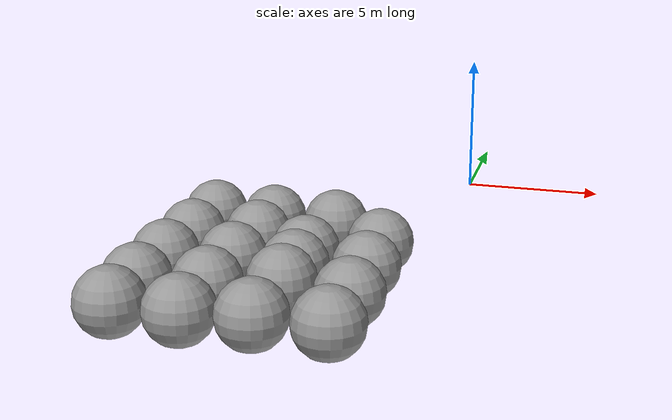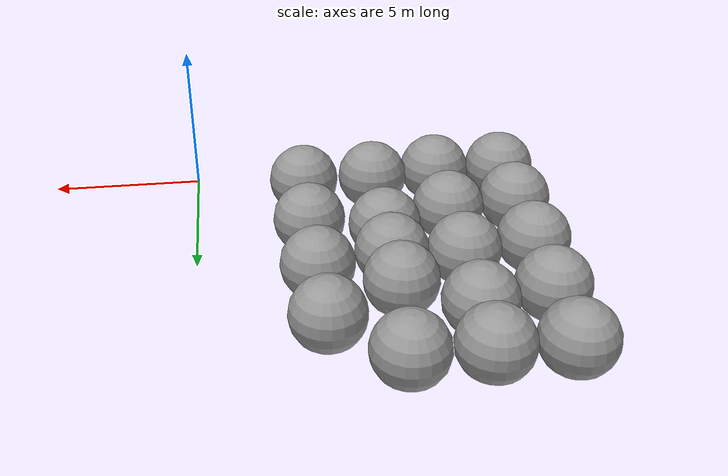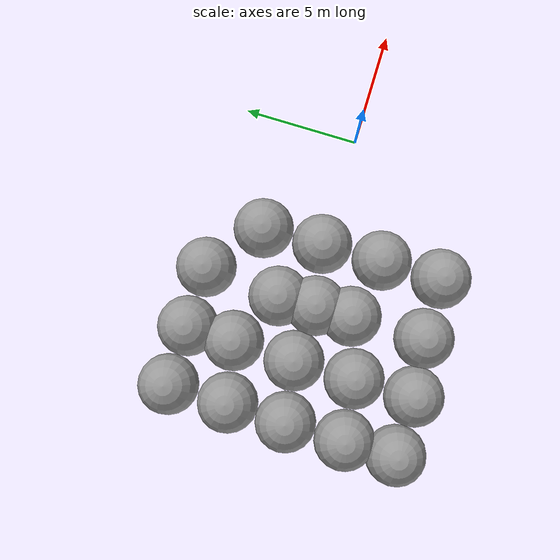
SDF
<sdf version="1.7">
 <world name="default">
  <model name="fly_spawn_38">
   <link name="link_0">
    <inertial>
     <mass>1</mass>
     <inertia><ixx>0.1</ixx><ixy>0</ixy><ixz>0</ixz><iyy>0.1</iyy><iyz>0</iyz><izz>0.1</izz></inertia>
     <pose>0 0 -2.0 0 -0 0</pose>
    </inertial>
    <visual name="visual">
     <pose>0 0 -2.0 0 -0 0</pose>
     <geometry><sphere><radius>1.5</radius></sphere></geometry>
     <material>
      <lighting>1</lighting>
      <script><uri>file://media/materials/scripts/gazebo.material</uri><name>Gazebo/Grey</name></script>
      <shader type="pixel"><normal_map>__default__</normal_map></shader>
      <ambient>0.3 0.3 0.3 1</ambient>
      <diffuse>0.7 0.7 0.7 1</diffuse>
      <specular>0.01 0.01 0.01 1</specular>
      <emissive>0 0 0 1</emissive>
     </material>
    </visual>
    <collision name="collision">
     <pose>0 0 -2.0 0 -0 0</pose>
     <geometry><sphere><radius>1.5</radius></sphere></geometry>
     <surface>
      <friction>
       <ode><mu>1</mu><mu2>1</mu2><fdir1>0 0 0</fdir1><slip1>0</slip1><slip2>0</slip2></ode>
       <torsional>
        <coefficient>1</coefficient>
        <patch_radius>0</patch_radius>
        <surface_radius>0</surface_radius>
        <use_patch_radius>1</use_patch_radius>
        <ode><slip>0</slip></ode>
       </torsional>
      </friction>
      <bounce><restitution_coefficient>0</restitution_coefficient><threshold>1e+06</threshold></bounce>
      <contact>
       <collide_without_contact>0</collide_without_contact>
       <collide_without_contact_bitmask>1</collide_without_contact_bitmask>
       <collide_bitmask>1</collide_bitmask>
       <ode>
        <soft_cfm>0</soft_cfm>
        <soft_erp>0.2</soft_erp>
        <kp>1e+13</kp>
        <kd>1</kd>
        <max_vel>0.01</max_vel>
        <min_depth>0</min_depth>
       </ode>
       <bullet>
        <split_impulse>1</split_impulse>
        <split_impulse_penetration_threshold>-0.01</split_impulse_penetration_threshold>
        <soft_cfm>0</soft_cfm>
        <soft_erp>0.2</soft_erp>
        <kp>1e+13</kp>
        <kd>1</kd>
       </bullet>
      </contact>
     </surface>
    </collision>
   </link>
   <static>1</static>
   <pose>-13.0749 5.32969 -2.0 0 -0 0</pose>
  </model>
  <model name="fly_spawn_0">
   <link name="link_0">
    <inertial>
     <mass>1</mass>
     <inertia><ixx>0.1</ixx><ixy>0</ixy><ixz>0</ixz><iyy>0.1</iyy><iyz>0</iyz><izz>0.1</izz></inertia>
     <pose>0 0 -2.0 0 -0 0</pose>
    </inertial>
    <visual name="visual">
     <pose>0 0 -2.0 0 -0 0</pose>
     <geometry><sphere><radius>1.5</radius></sphere></geometry>
     <material>
      <lighting>1</lighting>
      <script><uri>file://media/materials/scripts/gazebo.material</uri><name>Gazebo/Grey</name></script>
      <shader type="pixel"><normal_map>__default__</normal_map></shader>
      <ambient>0.3 0.3 0.3 1</ambient>
      <diffuse>0.7 0.7 0.7 1</diffuse>
      <specular>0.01 0.01 0.01 1</specular>
      <emissive>0 0 0 1</emissive>
     </material>
    </visual>
    <collision name="collision">
     <pose>0 0 -2.0 0 -0 0</pose>
     <geometry><sphere><radius>1.5</radius></sphere></geometry>
     <surface>
      <friction>
       <ode><mu>1</mu><mu2>1</mu2><fdir1>0 0 0</fdir1><slip1>0</slip1><slip2>0</slip2></ode>
       <torsional>
        <coefficient>1</coefficient>
        <patch_radius>0</patch_radius>
        <surface_radius>0</surface_radius>
        <use_patch_radius>1</use_patch_radius>
        <ode><slip>0</slip></ode>
       </torsional>
      </friction>
      <bounce><restitution_coefficient>0</restitution_coefficient><threshold>1e+06</threshold></bounce>
      <contact>
       <collide_without_contact>0</collide_without_contact>
       <collide_without_contact_bitmask>1</collide_without_contact_bitmask>
       <collide_bitmask>1</collide_bitmask>
       <ode>
        <soft_cfm>0</soft_cfm>
        <soft_erp>0.2</soft_erp>
        <kp>1e+13</kp>
        <kd>1</kd>
        <max_vel>0.01</max_vel>
        <min_depth>0</min_depth>
       </ode>
       <bullet>
        <split_impulse>1</split_impulse>
        <split_impulse_penetration_threshold>-0.01</split_impulse_penetration_threshold>
        <soft_cfm>0</soft_cfm>
        <soft_erp>0.2</soft_erp>
        <kp>1e+13</kp>
        <kd>1</kd>
       </bullet>
      </contact>
     </surface>
    </collision>
   </link>
   <static>1</static>
   <pose>-13.0897 2.29971 -2.0 0 -0 0</pose>
  </model>
  <model name="fly_spawn_1">
   <link name="link_0">
    <inertial>
     <mass>1</mass>
     <inertia><ixx>0.1</ixx><ixy>0</ixy><ixz>0</ixz><iyy>0.1</iyy><iyz>0</iyz><izz>0.1</izz></inertia>
     <pose>0 0 -2.0 0 -0 0</pose>
    </inertial>
    <visual name="visual">
     <pose>0 0 -2.0 0 -0 0</pose>
     <geometry><sphere><radius>1.5</radius></sphere></geometry>
     <material>
      <lighting>1</lighting>
      <script><uri>file://media/materials/scripts/gazebo.material</uri><name>Gazebo/Grey</name></script>
      <shader type="pixel"><normal_map>__default__</normal_map></shader>
      <ambient>0.3 0.3 0.3 1</ambient>
      <diffuse>0.7 0.7 0.7 1</diffuse>
      <specular>0.01 0.01 0.01 1</specular>
      <emissive>0 0 0 1</emissive>
     </material>
    </visual>
    <collision name="collision">
     <pose>0 0 -2.0 0 -0 0</pose>
     <geometry><sphere><radius>1.5</radius></sphere></geometry>
     <surface>
      <friction>
       <ode><mu>1</mu><mu2>1</mu2><fdir1>0 0 0</fdir1><slip1>0</slip1><slip2>0</slip2></ode>
       <torsional>
        <coefficient>1</coefficient>
        <patch_radius>0</patch_radius>
        <surface_radius>0</surface_radius>
        <use_patch_radius>1</use_patch_radius>
        <ode><slip>0</slip></ode>
       </torsional>
      </friction>
      <bounce><restitution_coefficient>0</restitution_coefficient><threshold>1e+06</threshold></bounce>
      <contact>
       <collide_without_contact>0</collide_without_contact>
       <collide_without_contact_bitmask>1</collide_without_contact_bitmask>
       <collide_bitmask>1</collide_bitmask>
       <ode>
        <soft_cfm>0</soft_cfm>
        <soft_erp>0.2</soft_erp>
        <kp>1e+13</kp>
        <kd>1</kd>
        <max_vel>0.01</max_vel>
        <min_depth>0</min_depth>
       </ode>
       <bullet>
        <split_impulse>1</split_impulse>
        <split_impulse_penetration_threshold>-0.01</split_impulse_penetration_threshold>
        <soft_cfm>0</soft_cfm>
        <soft_erp>0.2</soft_erp>
        <kp>1e+13</kp>
        <kd>1</kd>
       </bullet>
      </contact>
     </surface>
    </collision>
   </link>
   <static>1</static>
   <pose>-13.174 -0.669702 -2.0 0 -0 0</pose>
  </model>
  <model name="fly_spawn_2">
   <link name="link_0">
    <inertial>
     <mass>1</mass>
     <inertia><ixx>0.1</ixx><ixy>0</ixy><ixz>0</ixz><iyy>0.1</iyy><iyz>0</iyz><izz>0.1</izz></inertia>
     <pose>0 0 -2.0 0 -0 0</pose>
    </inertial>
    <visual name="visual">
     <pose>0 0 -2.0 0 -0 0</pose>
     <geometry><sphere><radius>1.5</radius></sphere></geometry>
     <material>
      <lighting>1</lighting>
      <script><uri>file://media/materials/scripts/gazebo.material</uri><name>Gazebo/Grey</name></script>
      <shader type="pixel"><normal_map>__default__</normal_map></shader>
      <ambient>0.3 0.3 0.3 1</ambient>
      <diffuse>0.7 0.7 0.7 1</diffuse>
      <specular>0.01 0.01 0.01 1</specular>
      <emissive>0 0 0 1</emissive>
     </material>
    </visual>
    <collision name="collision">
     <pose>0 0 -2.0 0 -0 0</pose>
     <geometry><sphere><radius>1.5</radius></sphere></geometry>
     <surface>
      <friction>
       <ode><mu>1</mu><mu2>1</mu2><fdir1>0 0 0</fdir1><slip1>0</slip1><slip2>0</slip2></ode>
       <torsional>
        <coefficient>1</coefficient>
        <patch_radius>0</patch_radius>
        <surface_radius>0</surface_radius>
        <use_patch_radius>1</use_patch_radius>
        <ode><slip>0</slip></ode>
       </torsional>
      </friction>
      <bounce><restitution_coefficient>0</restitution_coefficient><threshold>1e+06</threshold></bounce>
      <contact>
       <collide_without_contact>0</collide_without_contact>
       <collide_without_contact_bitmask>1</collide_without_contact_bitmask>
       <collide_bitmask>1</collide_bitmask>
       <ode>
        <soft_cfm>0</soft_cfm>
        <soft_erp>0.2</soft_erp>
        <kp>1e+13</kp>
        <kd>1</kd>
        <max_vel>0.01</max_vel>
        <min_depth>0</min_depth>
       </ode>
       <bullet>
        <split_impulse>1</split_impulse>
        <split_impulse_penetration_threshold>-0.01</split_impulse_penetration_threshold>
        <soft_cfm>0</soft_cfm>
        <soft_erp>0.2</soft_erp>
        <kp>1e+13</kp>
        <kd>1</kd>
       </bullet>
      </contact>
     </surface>
    </collision>
   </link>
   <static>1</static>
   <pose>-13.1784 -3.65977 -2.0 0 -0 0</pose>
  </model>
  <model name="fly_spawn_3">
   <link name="link_0">
    <inertial>
     <mass>1</mass>
     <inertia><ixx>0.1</ixx><ixy>0</ixy><ixz>0</ixz><iyy>0.1</iyy><iyz>0</iyz><izz>0.1</izz></inertia>
     <pose>0 0 -2.0 0 -0 0</pose>
    </inertial>
    <visual name="visual">
     <pose>0 0 -2.0 0 -0 0</pose>
     <geometry><sphere><radius>1.5</radius></sphere></geometry>
     <material>
      <lighting>1</lighting>
      <script><uri>file://media/materials/scripts/gazebo.material</uri><name>Gazebo/Grey</name></script>
      <shader type="pixel"><normal_map>__default__</normal_map></shader>
      <ambient>0.3 0.3 0.3 1</ambient>
      <diffuse>0.7 0.7 0.7 1</diffuse>
      <specular>0.01 0.01 0.01 1</specular>
      <emissive>0 0 0 1</emissive>
     </material>
    </visual>
    <collision name="collision">
     <pose>0 0 -2.0 0 -0 0</pose>
     <geometry><sphere><radius>1.5</radius></sphere></geometry>
     <surface>
      <friction>
       <ode><mu>1</mu><mu2>1</mu2><fdir1>0 0 0</fdir1><slip1>0</slip1><slip2>0</slip2></ode>
       <torsional>
        <coefficient>1</coefficient>
        <patch_radius>0</patch_radius>
        <surface_radius>0</surface_radius>
        <use_patch_radius>1</use_patch_radius>
        <ode><slip>0</slip></ode>
       </torsional>
      </friction>
      <bounce><restitution_coefficient>0</restitution_coefficient><threshold>1e+06</threshold></bounce>
      <contact>
       <collide_without_contact>0</collide_without_contact>
       <collide_without_contact_bitmask>1</collide_without_contact_bitmask>
       <collide_bitmask>1</collide_bitmask>
       <ode>
        <soft_cfm>0</soft_cfm>
        <soft_erp>0.2</soft_erp>
        <kp>1e+13</kp>
        <kd>1</kd>
        <max_vel>0.01</max_vel>
        <min_depth>0</min_depth>
       </ode>
       <bullet>
        <split_impulse>1</split_impulse>
        <split_impulse_penetration_threshold>-0.01</split_impulse_penetration_threshold>
        <soft_cfm>0</soft_cfm>
        <soft_erp>0.2</soft_erp>
        <kp>1e+13</kp>
        <kd>1</kd>
       </bullet>
      </contact>
     </surface>
    </collision>
   </link>
   <static>1</static>
   <pose>-13.1495 -6.24009 -2.0 0 -0 0</pose>
  </model>
  <model name="fly_spawn_4">
   <link name="link_0">
    <inertial>
     <mass>1</mass>
     <inertia><ixx>0.1</ixx><ixy>0</ixy><ixz>0</ixz><iyy>0.1</iyy><iyz>0</iyz><izz>0.1</izz></inertia>
     <pose>0 0 -2.0 0 -0 0</pose>
    </inertial>
    <visual name="visual">
     <pose>0 0 -2.0 0 -0 0</pose>
     <geometry><sphere><radius>1.5</radius></sphere></geometry>
     <material>
      <lighting>1</lighting>
      <script><uri>file://media/materials/scripts/gazebo.material</uri><name>Gazebo/Grey</name></script>
      <shader type="pixel"><normal_map>__default__</normal_map></shader>
      <ambient>0.3 0.3 0.3 1</ambient>
      <diffuse>0.7 0.7 0.7 1</diffuse>
      <specular>0.01 0.01 0.01 1</specular>
      <emissive>0 0 0 1</emissive>
     </material>
    </visual>
    <collision name="collision">
     <pose>0 0 -2.0 0 -0 0</pose>
     <geometry><sphere><radius>1.5</radius></sphere></geometry>
     <surface>
      <friction>
       <ode><mu>1</mu><mu2>1</mu2><fdir1>0 0 0</fdir1><slip1>0</slip1><slip2>0</slip2></ode>
       <torsional>
        <coefficient>1</coefficient>
        <patch_radius>0</patch_radius>
        <surface_radius>0</surface_radius>
        <use_patch_radius>1</use_patch_radius>
        <ode><slip>0</slip></ode>
       </torsional>
      </friction>
      <bounce><restitution_coefficient>0</restitution_coefficient><threshold>1e+06</threshold></bounce>
      <contact>
       <collide_without_contact>0</collide_without_contact>
       <collide_without_contact_bitmask>1</collide_without_contact_bitmask>
       <collide_bitmask>1</collide_bitmask>
       <ode>
        <soft_cfm>0</soft_cfm>
        <soft_erp>0.2</soft_erp>
        <kp>1e+13</kp>
        <kd>1</kd>
        <max_vel>0.01</max_vel>
        <min_depth>0</min_depth>
       </ode>
       <bullet>
        <split_impulse>1</split_impulse>
        <split_impulse_penetration_threshold>-0.01</split_impulse_penetration_threshold>
        <soft_cfm>0</soft_cfm>
        <soft_erp>0.2</soft_erp>
        <kp>1e+13</kp>
        <kd>1</kd>
       </bullet>
      </contact>
     </surface>
    </collision>
   </link>
   <static>1</static>
   <pose>-10.1867 -6.30589 -2.0 0 -0 0</pose>
  </model>
  <model name="fly_spawn_5">
   <link name="link_0">
    <inertial>
     <mass>1</mass>
     <inertia><ixx>0.1</ixx><ixy>0</ixy><ixz>0</ixz><iyy>0.1</iyy><iyz>0</iyz><izz>0.1</izz></inertia>
     <pose>0 0 -2.0 0 -0 0</pose>
    </inertial>
    <visual name="visual">
     <pose>0 0 -2.0 0 -0 0</pose>
     <geometry><sphere><radius>1.5</radius></sphere></geometry>
     <material>
      <lighting>1</lighting>
      <script><uri>file://media/materials/scripts/gazebo.material</uri><name>Gazebo/Grey</name></script>
      <shader type="pixel"><normal_map>__default__</normal_map></shader>
      <ambient>0.3 0.3 0.3 1</ambient>
      <diffuse>0.7 0.7 0.7 1</diffuse>
      <specular>0.01 0.01 0.01 1</specular>
      <emissive>0 0 0 1</emissive>
     </material>
    </visual>
    <collision name="collision">
     <pose>0 0 -2.0 0 -0 0</pose>
     <geometry><sphere><radius>1.5</radius></sphere></geometry>
     <surface>
      <friction>
       <ode><mu>1</mu><mu2>1</mu2><fdir1>0 0 0</fdir1><slip1>0</slip1><slip2>0</slip2></ode>
       <torsional>
        <coefficient>1</coefficient>
        <patch_radius>0</patch_radius>
        <surface_radius>0</surface_radius>
        <use_patch_radius>1</use_patch_radius>
        <ode><slip>0</slip></ode>
       </torsional>
      </friction>
      <bounce><restitution_coefficient>0</restitution_coefficient><threshold>1e+06</threshold></bounce>
      <contact>
       <collide_without_contact>0</collide_without_contact>
       <collide_without_contact_bitmask>1</collide_without_contact_bitmask>
       <collide_bitmask>1</collide_bitmask>
       <ode>
        <soft_cfm>0</soft_cfm>
        <soft_erp>0.2</soft_erp>
        <kp>1e+13</kp>
        <kd>1</kd>
        <max_vel>0.01</max_vel>
        <min_depth>0</min_depth>
       </ode>
       <bullet>
        <split_impulse>1</split_impulse>
        <split_impulse_penetration_threshold>-0.01</split_impulse_penetration_threshold>
        <soft_cfm>0</soft_cfm>
        <soft_erp>0.2</soft_erp>
        <kp>1e+13</kp>
        <kd>1</kd>
       </bullet>
      </contact>
     </surface>
    </collision>
   </link>
   <static>1</static>
   <pose>-10.206 -3.27536 -2.0 0 -0 0</pose>
  </model>
  <model name="fly_spawn_6">
   <link name="link_0">
    <inertial>
     <mass>1</mass>
     <inertia><ixx>0.1</ixx><ixy>0</ixy><ixz>0</ixz><iyy>0.1</iyy><iyz>0</iyz><izz>0.1</izz></inertia>
     <pose>0 0 -2.0 0 -0 0</pose>
    </inertial>
    <visual name="visual">
     <pose>0 0 -2.0 0 -0 0</pose>
     <geometry><sphere><radius>1.5</radius></sphere></geometry>
     <material>
      <lighting>1</lighting>
      <script><uri>file://media/materials/scripts/gazebo.material</uri><name>Gazebo/Grey</name></script>
      <shader type="pixel"><normal_map>__default__</normal_map></shader>
      <ambient>0.3 0.3 0.3 1</ambient>
      <diffuse>0.7 0.7 0.7 1</diffuse>
      <specular>0.01 0.01 0.01 1</specular>
      <emissive>0 0 0 1</emissive>
     </material>
    </visual>
    <collision name="collision">
     <pose>0 0 -2.0 0 -0 0</pose>
     <geometry><sphere><radius>1.5</radius></sphere></geometry>
     <surface>
      <friction>
       <ode><mu>1</mu><mu2>1</mu2><fdir1>0 0 0</fdir1><slip1>0</slip1><slip2>0</slip2></ode>
       <torsional>
        <coefficient>1</coefficient>
        <patch_radius>0</patch_radius>
        <surface_radius>0</surface_radius>
        <use_patch_radius>1</use_patch_radius>
        <ode><slip>0</slip></ode>
       </torsional>
      </friction>
      <bounce><restitution_coefficient>0</restitution_coefficient><threshold>1e+06</threshold></bounce>
      <contact>
       <collide_without_contact>0</collide_without_contact>
       <collide_without_contact_bitmask>1</collide_without_contact_bitmask>
       <collide_bitmask>1</collide_bitmask>
       <ode>
        <soft_cfm>0</soft_cfm>
        <soft_erp>0.2</soft_erp>
        <kp>1e+13</kp>
        <kd>1</kd>
        <max_vel>0.01</max_vel>
        <min_depth>0</min_depth>
       </ode>
       <bullet>
        <split_impulse>1</split_impulse>
        <split_impulse_penetration_threshold>-0.01</split_impulse_penetration_threshold>
        <soft_cfm>0</soft_cfm>
        <soft_erp>0.2</soft_erp>
        <kp>1e+13</kp>
        <kd>1</kd>
       </bullet>
      </contact>
     </surface>
    </collision>
   </link>
   <static>1</static>
   <pose>-10.2147 -0.204964 -2.0 0 -0 0</pose>
  </model>
  <model name="fly_spawn_7">
   <link name="link_0">
    <inertial>
     <mass>1</mass>
     <inertia><ixx>0.1</ixx><ixy>0</ixy><ixz>0</ixz><iyy>0.1</iyy><iyz>0</iyz><izz>0.1</izz></inertia>
     <pose>0 0 -2.0 0 -0 0</pose>
    </inertial>
    <visual name="visual">
     <pose>0 0 -2.0 0 -0 0</pose>
     <geometry><sphere><radius>1.5</radius></sphere></geometry>
     <material>
      <lighting>1</lighting>
      <script><uri>file://media/materials/scripts/gazebo.material</uri><name>Gazebo/Grey</name></script>
      <shader type="pixel"><normal_map>__default__</normal_map></shader>
      <ambient>0.3 0.3 0.3 1</ambient>
      <diffuse>0.7 0.7 0.7 1</diffuse>
      <specular>0.01 0.01 0.01 1</specular>
      <emissive>0 0 0 1</emissive>
     </material>
    </visual>
    <collision name="collision">
     <pose>0 0 -2.0 0 -0 0</pose>
     <geometry><sphere><radius>1.5</radius></sphere></geometry>
     <surface>
      <friction>
       <ode><mu>1</mu><mu2>1</mu2><fdir1>0 0 0</fdir1><slip1>0</slip1><slip2>0</slip2></ode>
       <torsional>
        <coefficient>1</coefficient>
        <patch_radius>0</patch_radius>
        <surface_radius>0</surface_radius>
        <use_patch_radius>1</use_patch_radius>
        <ode><slip>0</slip></ode>
       </torsional>
      </friction>
      <bounce><restitution_coefficient>0</restitution_coefficient><threshold>1e+06</threshold></bounce>
      <contact>
       <collide_without_contact>0</collide_without_contact>
       <collide_without_contact_bitmask>1</collide_without_contact_bitmask>
       <collide_bitmask>1</collide_bitmask>
       <ode>
        <soft_cfm>0</soft_cfm>
        <soft_erp>0.2</soft_erp>
        <kp>1e+13</kp>
        <kd>1</kd>
        <max_vel>0.01</max_vel>
        <min_depth>0</min_depth>
       </ode>
       <bullet>
        <split_impulse>1</split_impulse>
        <split_impulse_penetration_threshold>-0.01</split_impulse_penetration_threshold>
        <soft_cfm>0</soft_cfm>
        <soft_erp>0.2</soft_erp>
        <kp>1e+13</kp>
        <kd>1</kd>
       </bullet>
      </contact>
     </surface>
    </collision>
   </link>
   <static>1</static>
   <pose>-10.1328 2.91422 -2.0 0 -0 0</pose>
  </model>
  <model name="fly_spawn_8">
   <link name="link_0">
    <inertial>
     <mass>1</mass>
     <inertia><ixx>0.1</ixx><ixy>0</ixy><ixz>0</ixz><iyy>0.1</iyy><iyz>0</iyz><izz>0.1</izz></inertia>
     <pose>0 0 -2.0 0 -0 0</pose>
    </inertial>
    <visual name="visual">
     <pose>0 0 -2.0 0 -0 0</pose>
     <geometry><sphere><radius>1.5</radius></sphere></geometry>
     <material>
      <lighting>1</lighting>
      <script><uri>file://media/materials/scripts/gazebo.material</uri><name>Gazebo/Grey</name></script>
      <shader type="pixel"><normal_map>__default__</normal_map></shader>
      <ambient>0.3 0.3 0.3 1</ambient>
      <diffuse>0.7 0.7 0.7 1</diffuse>
      <specular>0.01 0.01 0.01 1</specular>
      <emissive>0 0 0 1</emissive>
     </material>
    </visual>
    <collision name="collision">
     <pose>0 0 -2.0 0 -0 0</pose>
     <geometry><sphere><radius>1.5</radius></sphere></geometry>
     <surface>
      <friction>
       <ode><mu>1</mu><mu2>1</mu2><fdir1>0 0 0</fdir1><slip1>0</slip1><slip2>0</slip2></ode>
       <torsional>
        <coefficient>1</coefficient>
        <patch_radius>0</patch_radius>
        <surface_radius>0</surface_radius>
        <use_patch_radius>1</use_patch_radius>
        <ode><slip>0</slip></ode>
       </torsional>
      </friction>
      <bounce><restitution_coefficient>0</restitution_coefficient><threshold>1e+06</threshold></bounce>
      <contact>
       <collide_without_contact>0</collide_without_contact>
       <collide_without_contact_bitmask>1</collide_without_contact_bitmask>
       <collide_bitmask>1</collide_bitmask>
       <ode>
        <soft_cfm>0</soft_cfm>
        <soft_erp>0.2</soft_erp>
        <kp>1e+13</kp>
        <kd>1</kd>
        <max_vel>0.01</max_vel>
        <min_depth>0</min_depth>
       </ode>
       <bullet>
        <split_impulse>1</split_impulse>
        <split_impulse_penetration_threshold>-0.01</split_impulse_penetration_threshold>
        <soft_cfm>0</soft_cfm>
        <soft_erp>0.2</soft_erp>
        <kp>1e+13</kp>
        <kd>1</kd>
       </bullet>
      </contact>
     </surface>
    </collision>
   </link>
   <static>1</static>
   <pose>-10.091 5.28387 -2.0 0 -0 0</pose>
  </model>
  <model name="fly_spawn_9">
   <link name="link_0">
    <inertial>
     <mass>1</mass>
     <inertia><ixx>0.1</ixx><ixy>0</ixy><ixz>0</ixz><iyy>0.1</iyy><iyz>0</iyz><izz>0.1</izz></inertia>
     <pose>0 0 -2.0 0 -0 0</pose>
    </inertial>
    <visual name="visual">
     <pose>0 0 -2.0 0 -0 0</pose>
     <geometry><sphere><radius>1.5</radius></sphere></geometry>
     <material>
      <lighting>1</lighting>
      <script><uri>file://media/materials/scripts/gazebo.material</uri><name>Gazebo/Grey</name></script>
      <shader type="pixel"><normal_map>__default__</normal_map></shader>
      <ambient>0.3 0.3 0.3 1</ambient>
      <diffuse>0.7 0.7 0.7 1</diffuse>
      <specular>0.01 0.01 0.01 1</specular>
      <emissive>0 0 0 1</emissive>
     </material>
    </visual>
    <collision name="collision">
     <pose>0 0 -2.0 0 -0 0</pose>
     <geometry><sphere><radius>1.5</radius></sphere></geometry>
     <surface>
      <friction>
       <ode><mu>1</mu><mu2>1</mu2><fdir1>0 0 0</fdir1><slip1>0</slip1><slip2>0</slip2></ode>
       <torsional>
        <coefficient>1</coefficient>
        <patch_radius>0</patch_radius>
        <surface_radius>0</surface_radius>
        <use_patch_radius>1</use_patch_radius>
        <ode><slip>0</slip></ode>
       </torsional>
      </friction>
      <bounce><restitution_coefficient>0</restitution_coefficient><threshold>1e+06</threshold></bounce>
      <contact>
       <collide_without_contact>0</collide_without_contact>
       <collide_without_contact_bitmask>1</collide_without_contact_bitmask>
       <collide_bitmask>1</collide_bitmask>
       <ode>
        <soft_cfm>0</soft_cfm>
        <soft_erp>0.2</soft_erp>
        <kp>1e+13</kp>
        <kd>1</kd>
        <max_vel>0.01</max_vel>
        <min_depth>0</min_depth>
       </ode>
       <bullet>
        <split_impulse>1</split_impulse>
        <split_impulse_penetration_threshold>-0.01</split_impulse_penetration_threshold>
        <soft_cfm>0</soft_cfm>
        <soft_erp>0.2</soft_erp>
        <kp>1e+13</kp>
        <kd>1</kd>
       </bullet>
      </contact>
     </surface>
    </collision>
   </link>
   <static>1</static>
   <pose>-7.06072 5.28317 -2.0 0 -0 0</pose>
  </model>
  <model name="fly_spawn_10">
   <link name="link_0">
    <inertial>
     <mass>1</mass>
     <inertia><ixx>0.1</ixx><ixy>0</ixy><ixz>0</ixz><iyy>0.1</iyy><iyz>0</iyz><izz>0.1</izz></inertia>
     <pose>0 0 -2.0 0 -0 0</pose>
    </inertial>
    <visual name="visual">
     <pose>0 0 -2.0 0 -0 0</pose>
     <geometry><sphere><radius>1.5</radius></sphere></geometry>
     <material>
      <lighting>1</lighting>
      <script><uri>file://media/materials/scripts/gazebo.material</uri><name>Gazebo/Grey</name></script>
      <shader type="pixel"><normal_map>__default__</normal_map></shader>
      <ambient>0.3 0.3 0.3 1</ambient>
      <diffuse>0.7 0.7 0.7 1</diffuse>
      <specular>0.01 0.01 0.01 1</specular>
      <emissive>0 0 0 1</emissive>
     </material>
    </visual>
    <collision name="collision">
     <pose>0 0 -2.0 0 -0 0</pose>
     <geometry><sphere><radius>1.5</radius></sphere></geometry>
     <surface>
      <friction>
       <ode><mu>1</mu><mu2>1</mu2><fdir1>0 0 0</fdir1><slip1>0</slip1><slip2>0</slip2></ode>
       <torsional>
        <coefficient>1</coefficient>
        <patch_radius>0</patch_radius>
        <surface_radius>0</surface_radius>
        <use_patch_radius>1</use_patch_radius>
        <ode><slip>0</slip></ode>
       </torsional>
      </friction>
      <bounce><restitution_coefficient>0</restitution_coefficient><threshold>1e+06</threshold></bounce>
      <contact>
       <collide_without_contact>0</collide_without_contact>
       <collide_without_contact_bitmask>1</collide_without_contact_bitmask>
       <collide_bitmask>1</collide_bitmask>
       <ode>
        <soft_cfm>0</soft_cfm>
        <soft_erp>0.2</soft_erp>
        <kp>1e+13</kp>
        <kd>1</kd>
        <max_vel>0.01</max_vel>
        <min_depth>0</min_depth>
       </ode>
       <bullet>
        <split_impulse>1</split_impulse>
        <split_impulse_penetration_threshold>-0.01</split_impulse_penetration_threshold>
        <soft_cfm>0</soft_cfm>
        <soft_erp>0.2</soft_erp>
        <kp>1e+13</kp>
        <kd>1</kd>
       </bullet>
      </contact>
     </surface>
    </collision>
   </link>
   <static>1</static>
   <pose>-7.40093 1.43907 -2.0 0 -0 0</pose>
  </model>
  <model name="fly_spawn_11">
   <link name="link_0">
    <inertial>
     <mass>1</mass>
     <inertia><ixx>0.1</ixx><ixy>0</ixy><ixz>0</ixz><iyy>0.1</iyy><iyz>0</iyz><izz>0.1</izz></inertia>
     <pose>0 0 -2.0 0 -0 0</pose>
    </inertial>
    <visual name="visual">
     <pose>0 0 -2.0 0 -0 0</pose>
     <geometry><sphere><radius>1.5</radius></sphere></geometry>
     <material>
      <lighting>1</lighting>
      <script><uri>file://media/materials/scripts/gazebo.material</uri><name>Gazebo/Grey</name></script>
      <shader type="pixel"><normal_map>__default__</normal_map></shader>
      <ambient>0.3 0.3 0.3 1</ambient>
      <diffuse>0.7 0.7 0.7 1</diffuse>
      <specular>0.01 0.01 0.01 1</specular>
      <emissive>0 0 0 1</emissive>
     </material>
    </visual>
    <collision name="collision">
     <pose>0 0 -2.0 0 -0 0</pose>
     <geometry><sphere><radius>1.5</radius></sphere></geometry>
     <surface>
      <friction>
       <ode><mu>1</mu><mu2>1</mu2><fdir1>0 0 0</fdir1><slip1>0</slip1><slip2>0</slip2></ode>
       <torsional>
        <coefficient>1</coefficient>
        <patch_radius>0</patch_radius>
        <surface_radius>0</surface_radius>
        <use_patch_radius>1</use_patch_radius>
        <ode><slip>0</slip></ode>
       </torsional>
      </friction>
      <bounce><restitution_coefficient>0</restitution_coefficient><threshold>1e+06</threshold></bounce>
      <contact>
       <collide_without_contact>0</collide_without_contact>
       <collide_without_contact_bitmask>1</collide_without_contact_bitmask>
       <collide_bitmask>1</collide_bitmask>
       <ode>
        <soft_cfm>0</soft_cfm>
        <soft_erp>0.2</soft_erp>
        <kp>1e+13</kp>
        <kd>1</kd>
        <max_vel>0.01</max_vel>
        <min_depth>0</min_depth>
       </ode>
       <bullet>
        <split_impulse>1</split_impulse>
        <split_impulse_penetration_threshold>-0.01</split_impulse_penetration_threshold>
        <soft_cfm>0</soft_cfm>
        <soft_erp>0.2</soft_erp>
        <kp>1e+13</kp>
        <kd>1</kd>
       </bullet>
      </contact>
     </surface>
    </collision>
   </link>
   <static>1</static>
   <pose>-7.32138 -2.28074 -2.0 0 -0 0</pose>
  </model>
  <model name="fly_spawn_12">
   <link name="link_0">
    <inertial>
     <mass>1</mass>
     <inertia><ixx>0.1</ixx><ixy>0</ixy><ixz>0</ixz><iyy>0.1</iyy><iyz>0</iyz><izz>0.1</izz></inertia>
     <pose>0 0 -2.0 0 -0 0</pose>
    </inertial>
    <visual name="visual">
     <pose>0 0 -2.0 0 -0 0</pose>
     <geometry><sphere><radius>1.5</radius></sphere></geometry>
     <material>
      <lighting>1</lighting>
      <script><uri>file://media/materials/scripts/gazebo.material</uri><name>Gazebo/Grey</name></script>
      <shader type="pixel"><normal_map>__default__</normal_map></shader>
      <ambient>0.3 0.3 0.3 1</ambient>
      <diffuse>0.7 0.7 0.7 1</diffuse>
      <specular>0.01 0.01 0.01 1</specular>
      <emissive>0 0 0 1</emissive>
     </material>
    </visual>
    <collision name="collision">
     <pose>0 0 -2.0 0 -0 0</pose>
     <geometry><sphere><radius>1.5</radius></sphere></geometry>
     <surface>
      <friction>
       <ode><mu>1</mu><mu2>1</mu2><fdir1>0 0 0</fdir1><slip1>0</slip1><slip2>0</slip2></ode>
       <torsional>
        <coefficient>1</coefficient>
        <patch_radius>0</patch_radius>
        <surface_radius>0</surface_radius>
        <use_patch_radius>1</use_patch_radius>
        <ode><slip>0</slip></ode>
       </torsional>
      </friction>
      <bounce><restitution_coefficient>0</restitution_coefficient><threshold>1e+06</threshold></bounce>
      <contact>
       <collide_without_contact>0</collide_without_contact>
       <collide_without_contact_bitmask>1</collide_without_contact_bitmask>
       <collide_bitmask>1</collide_bitmask>
       <ode>
        <soft_cfm>0</soft_cfm>
        <soft_erp>0.2</soft_erp>
        <kp>1e+13</kp>
        <kd>1</kd>
        <max_vel>0.01</max_vel>
        <min_depth>0</min_depth>
       </ode>
       <bullet>
        <split_impulse>1</split_impulse>
        <split_impulse_penetration_threshold>-0.01</split_impulse_penetration_threshold>
        <soft_cfm>0</soft_cfm>
        <soft_erp>0.2</soft_erp>
        <kp>1e+13</kp>
        <kd>1</kd>
       </bullet>
      </contact>
     </surface>
    </collision>
   </link>
   <static>1</static>
   <pose>-7.32608 -0.450745 -2.0 0 -0 0</pose>
  </model>
  <model name="fly_spawn_13">
   <link name="link_0">
    <inertial>
     <mass>1</mass>
     <inertia><ixx>0.1</ixx><ixy>0</ixy><ixz>0</ixz><iyy>0.1</iyy><iyz>0</iyz><izz>0.1</izz></inertia>
     <pose>0 0 -2.0 0 -0 0</pose>
    </inertial>
    <visual name="visual">
     <pose>0 0 -2.0 0 -0 0</pose>
     <geometry><sphere><radius>1.5</radius></sphere></geometry>
     <material>
      <lighting>1</lighting>
      <script><uri>file://media/materials/scripts/gazebo.material</uri><name>Gazebo/Grey</name></script>
      <shader type="pixel"><normal_map>__default__</normal_map></shader>
      <ambient>0.3 0.3 0.3 1</ambient>
      <diffuse>0.7 0.7 0.7 1</diffuse>
      <specular>0.01 0.01 0.01 1</specular>
      <emissive>0 0 0 1</emissive>
     </material>
    </visual>
    <collision name="collision">
     <pose>0 0 -2.0 0 -0 0</pose>
     <geometry><sphere><radius>1.5</radius></sphere></geometry>
     <surface>
      <friction>
       <ode><mu>1</mu><mu2>1</mu2><fdir1>0 0 0</fdir1><slip1>0</slip1><slip2>0</slip2></ode>
       <torsional>
        <coefficient>1</coefficient>
        <patch_radius>0</patch_radius>
        <surface_radius>0</surface_radius>
        <use_patch_radius>1</use_patch_radius>
        <ode><slip>0</slip></ode>
       </torsional>
      </friction>
      <bounce><restitution_coefficient>0</restitution_coefficient><threshold>1e+06</threshold></bounce>
      <contact>
       <collide_without_contact>0</collide_without_contact>
       <collide_without_contact_bitmask>1</collide_without_contact_bitmask>
       <collide_bitmask>1</collide_bitmask>
       <ode>
        <soft_cfm>0</soft_cfm>
        <soft_erp>0.2</soft_erp>
        <kp>1e+13</kp>
        <kd>1</kd>
        <max_vel>0.01</max_vel>
        <min_depth>0</min_depth>
       </ode>
       <bullet>
        <split_impulse>1</split_impulse>
        <split_impulse_penetration_threshold>-0.01</split_impulse_penetration_threshold>
        <soft_cfm>0</soft_cfm>
        <soft_erp>0.2</soft_erp>
        <kp>1e+13</kp>
        <kd>1</kd>
       </bullet>
      </contact>
     </surface>
    </collision>
   </link>
   <static>1</static>
   <pose>-7.33183 -6.00078 -2.0 0 -0 0</pose>
  </model>
  <model name="fly_spawn_14">
   <link name="link_0">
    <inertial>
     <mass>1</mass>
     <inertia><ixx>0.1</ixx><ixy>0</ixy><ixz>0</ixz><iyy>0.1</iyy><iyz>0</iyz><izz>0.1</izz></inertia>
     <pose>0 0 -2.0 0 -0 0</pose>
    </inertial>
    <visual name="visual">
     <pose>0 0 -2.0 0 -0 0</pose>
     <geometry><sphere><radius>1.5</radius></sphere></geometry>
     <material>
      <lighting>1</lighting>
      <script><uri>file://media/materials/scripts/gazebo.material</uri><name>Gazebo/Grey</name></script>
      <shader type="pixel"><normal_map>__default__</normal_map></shader>
      <ambient>0.3 0.3 0.3 1</ambient>
      <diffuse>0.7 0.7 0.7 1</diffuse>
      <specular>0.01 0.01 0.01 1</specular>
      <emissive>0 0 0 1</emissive>
     </material>
    </visual>
    <collision name="collision">
     <pose>0 0 -2.0 0 -0 0</pose>
     <geometry><sphere><radius>1.5</radius></sphere></geometry>
     <surface>
      <friction>
       <ode><mu>1</mu><mu2>1</mu2><fdir1>0 0 0</fdir1><slip1>0</slip1><slip2>0</slip2></ode>
       <torsional>
        <coefficient>1</coefficient>
        <patch_radius>0</patch_radius>
        <surface_radius>0</surface_radius>
        <use_patch_radius>1</use_patch_radius>
        <ode><slip>0</slip></ode>
       </torsional>
      </friction>
      <bounce><restitution_coefficient>0</restitution_coefficient><threshold>1e+06</threshold></bounce>
      <contact>
       <collide_without_contact>0</collide_without_contact>
       <collide_without_contact_bitmask>1</collide_without_contact_bitmask>
       <collide_bitmask>1</collide_bitmask>
       <ode>
        <soft_cfm>0</soft_cfm>
        <soft_erp>0.2</soft_erp>
        <kp>1e+13</kp>
        <kd>1</kd>
        <max_vel>0.01</max_vel>
        <min_depth>0</min_depth>
       </ode>
       <bullet>
        <split_impulse>1</split_impulse>
        <split_impulse_penetration_threshold>-0.01</split_impulse_penetration_threshold>
        <soft_cfm>0</soft_cfm>
        <soft_erp>0.2</soft_erp>
        <kp>1e+13</kp>
        <kd>1</kd>
       </bullet>
      </contact>
     </surface>
    </collision>
   </link>
   <static>1</static>
   <pose>-4.2645 -5.98653 -2.0 0 -0 0</pose>
  </model>
  <model name="fly_spawn_15">
   <link name="link_0">
    <inertial>
     <mass>1</mass>
     <inertia><ixx>0.1</ixx><ixy>0</ixy><ixz>0</ixz><iyy>0.1</iyy><iyz>0</iyz><izz>0.1</izz></inertia>
     <pose>0 0 -2.0 0 -0 0</pose>
    </inertial>
    <visual name="visual">
     <pose>0 0 -2.0 0 -0 0</pose>
     <geometry><sphere><radius>1.5</radius></sphere></geometry>
     <material>
      <lighting>1</lighting>
      <script><uri>file://media/materials/scripts/gazebo.material</uri><name>Gazebo/Grey</name></script>
      <shader type="pixel"><normal_map>__default__</normal_map></shader>
      <ambient>0.3 0.3 0.3 1</ambient>
      <diffuse>0.7 0.7 0.7 1</diffuse>
      <specular>0.01 0.01 0.01 1</specular>
      <emissive>0 0 0 1</emissive>
     </material>
    </visual>
    <collision name="collision">
     <pose>0 0 -2.0 0 -0 0</pose>
     <geometry><sphere><radius>1.5</radius></sphere></geometry>
     <surface>
      <friction>
       <ode><mu>1</mu><mu2>1</mu2><fdir1>0 0 0</fdir1><slip1>0</slip1><slip2>0</slip2></ode>
       <torsional>
        <coefficient>1</coefficient>
        <patch_radius>0</patch_radius>
        <surface_radius>0</surface_radius>
        <use_patch_radius>1</use_patch_radius>
        <ode><slip>0</slip></ode>
       </torsional>
      </friction>
      <bounce><restitution_coefficient>0</restitution_coefficient><threshold>1e+06</threshold></bounce>
      <contact>
       <collide_without_contact>0</collide_without_contact>
       <collide_without_contact_bitmask>1</collide_without_contact_bitmask>
       <collide_bitmask>1</collide_bitmask>
       <ode>
        <soft_cfm>0</soft_cfm>
        <soft_erp>0.2</soft_erp>
        <kp>1e+13</kp>
        <kd>1</kd>
        <max_vel>0.01</max_vel>
        <min_depth>0</min_depth>
       </ode>
       <bullet>
        <split_impulse>1</split_impulse>
        <split_impulse_penetration_threshold>-0.01</split_impulse_penetration_threshold>
        <soft_cfm>0</soft_cfm>
        <soft_erp>0.2</soft_erp>
        <kp>1e+13</kp>
        <kd>1</kd>
       </bullet>
      </contact>
     </surface>
    </collision>
   </link>
   <static>1</static>
   <pose>-4.24353 -2.93654 -2.0 0 -0 0</pose>
  </model>
  <model name="fly_spawn_16">
   <link name="link_0">
    <inertial>
     <mass>1</mass>
     <inertia><ixx>0.1</ixx><ixy>0</ixy><ixz>0</ixz><iyy>0.1</iyy><iyz>0</iyz><izz>0.1</izz></inertia>
     <pose>0 0 -2.0 0 -0 0</pose>
    </inertial>
    <visual name="visual">
     <pose>0 0 -2.0 0 -0 0</pose>
     <geometry><sphere><radius>1.5</radius></sphere></geometry>
     <material>
      <lighting>1</lighting>
      <script><uri>file://media/materials/scripts/gazebo.material</uri><name>Gazebo/Grey</name></script>
      <shader type="pixel"><normal_map>__default__</normal_map></shader>
      <ambient>0.3 0.3 0.3 1</ambient>
      <diffuse>0.7 0.7 0.7 1</diffuse>
      <specular>0.01 0.01 0.01 1</specular>
      <emissive>0 0 0 1</emissive>
     </material>
    </visual>
    <collision name="collision">
     <pose>0 0 -2.0 0 -0 0</pose>
     <geometry><sphere><radius>1.5</radius></sphere></geometry>
     <surface>
      <friction>
       <ode><mu>1</mu><mu2>1</mu2><fdir1>0 0 0</fdir1><slip1>0</slip1><slip2>0</slip2></ode>
       <torsional>
        <coefficient>1</coefficient>
        <patch_radius>0</patch_radius>
        <surface_radius>0</surface_radius>
        <use_patch_radius>1</use_patch_radius>
        <ode><slip>0</slip></ode>
       </torsional>
      </friction>
      <bounce><restitution_coefficient>0</restitution_coefficient><threshold>1e+06</threshold></bounce>
      <contact>
       <collide_without_contact>0</collide_without_contact>
       <collide_without_contact_bitmask>1</collide_without_contact_bitmask>
       <collide_bitmask>1</collide_bitmask>
       <ode>
        <soft_cfm>0</soft_cfm>
        <soft_erp>0.2</soft_erp>
        <kp>1e+13</kp>
        <kd>1</kd>
        <max_vel>0.01</max_vel>
        <min_depth>0</min_depth>
       </ode>
       <bullet>
        <split_impulse>1</split_impulse>
        <split_impulse_penetration_threshold>-0.01</split_impulse_penetration_threshold>
        <soft_cfm>0</soft_cfm>
        <soft_erp>0.2</soft_erp>
        <kp>1e+13</kp>
        <kd>1</kd>
       </bullet>
      </contact>
     </surface>
    </collision>
   </link>
   <static>1</static>
   <pose>-4.30242 0.124528 -2.0 0 -0 0</pose>
  </model>
  <model name="fly_spawn_17">
   <link name="link_0">
    <inertial>
     <mass>1</mass>
     <inertia><ixx>0.1</ixx><ixy>0</ixy><ixz>0</ixz><iyy>0.1</iyy><iyz>0</iyz><izz>0.1</izz></inertia>
     <pose>0 0 -2.0 0 -0 0</pose>
    </inertial>
    <visual name="visual">
     <pose>0 0 -2.0 0 -0 0</pose>
     <geometry><sphere><radius>1.5</radius></sphere></geometry>
     <material>
      <lighting>1</lighting>
      <script><uri>file://media/materials/scripts/gazebo.material</uri><name>Gazebo/Grey</name></script>
      <shader type="pixel"><normal_map>__default__</normal_map></shader>
      <ambient>0.3 0.3 0.3 1</ambient>
      <diffuse>0.7 0.7 0.7 1</diffuse>
      <specular>0.01 0.01 0.01 1</specular>
      <emissive>0 0 0 1</emissive>
     </material>
    </visual>
    <collision name="collision">
     <pose>0 0 -2.0 0 -0 0</pose>
     <geometry><sphere><radius>1.5</radius></sphere></geometry>
     <surface>
      <friction>
       <ode><mu>1</mu><mu2>1</mu2><fdir1>0 0 0</fdir1><slip1>0</slip1><slip2>0</slip2></ode>
       <torsional>
        <coefficient>1</coefficient>
        <patch_radius>0</patch_radius>
        <surface_radius>0</surface_radius>
        <use_patch_radius>1</use_patch_radius>
        <ode><slip>0</slip></ode>
       </torsional>
      </friction>
      <bounce><restitution_coefficient>0</restitution_coefficient><threshold>1e+06</threshold></bounce>
      <contact>
       <collide_without_contact>0</collide_without_contact>
       <collide_without_contact_bitmask>1</collide_without_contact_bitmask>
       <collide_bitmask>1</collide_bitmask>
       <ode>
        <soft_cfm>0</soft_cfm>
        <soft_erp>0.2</soft_erp>
        <kp>1e+13</kp>
        <kd>1</kd>
        <max_vel>0.01</max_vel>
        <min_depth>0</min_depth>
       </ode>
       <bullet>
        <split_impulse>1</split_impulse>
        <split_impulse_penetration_threshold>-0.01</split_impulse_penetration_threshold>
        <soft_cfm>0</soft_cfm>
        <soft_erp>0.2</soft_erp>
        <kp>1e+13</kp>
        <kd>1</kd>
       </bullet>
      </contact>
     </surface>
    </collision>
   </link>
   <static>1</static>
   <pose>-4.39198 3.136 -2.0 0 -0 0</pose>
  </model>
 </world>
</sdf>
